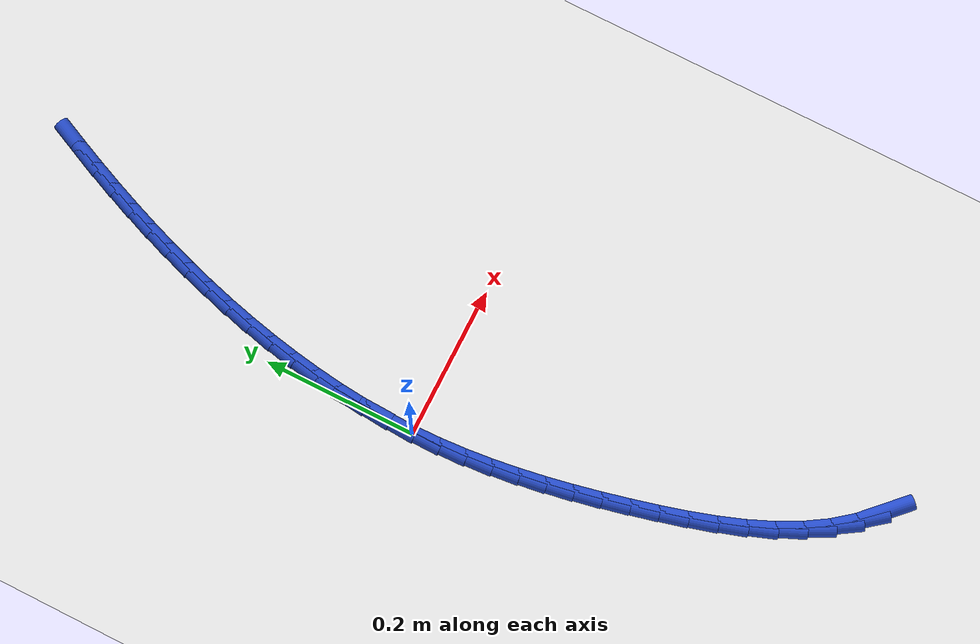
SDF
<sdf version="1.6">
 <world name="default">
  <model name="ground_plane">
   <static>1</static>
   <link name="link">
    <collision name="collision">
     <geometry><plane><normal>0 0 1</normal><size>100 100</size></plane></geometry>
     <surface><friction><ode><mu>100</mu><mu2>50</mu2></ode></friction></surface>
    </collision>
    <visual name="visual">
     <cast_shadows>0</cast_shadows>
     <geometry><plane><normal>0 0 1</normal><size>100 100</size></plane></geometry>
     <material>
      <script><uri>file://media/materials/scripts/gazebo.material</uri><name>Gazebo/WhiteGlow</name></script>
     </material>
    </visual>
   </link>
  </model>
  <model name="line">
   <link name="link_0">
    <pose>8.673617379884035e-18 -4.85722573273506e-17 0.01 0 1.57 1.5538400042042941</pose>
    <collision name="collision">
     <geometry><cylinder><radius>0.01</radius><length>0.08</length></cylinder></geometry>
    </collision>
    <visual name="visual">
     <material>
      <script><name>Gazebo/Blue</name><uri>file://media/materials/scripts/gazebo.material</uri></script>
     </material>
     <geometry><cylinder><radius>0.01</radius><length>0.08</length></cylinder></geometry>
    </visual>
   </link>
   <link name="link_1">
    <pose>0.0005829402250927743 0.0343756349599535 0.01 0 1.57 1.5145570619126267</pose>
    <collision name="collision">
     <geometry><cylinder><radius>0.01</radius><length>0.08</length></cylinder></geometry>
    </collision>
    <visual name="visual">
     <material>
      <script><name>Gazebo/Blue</name><uri>file://media/materials/scripts/gazebo.material</uri></script>
     </material>
     <geometry><cylinder><radius>0.01</radius><length>0.08</length></cylinder></geometry>
    </visual>
   </link>
   <link name="link_2">
    <pose>0.002524983309487091 0.06887102158644641 0.01 0 1.57 1.4776652040989346</pose>
    <collision name="collision">
     <geometry><cylinder><radius>0.01</radius><length>0.08</length></cylinder></geometry>
    </collision>
    <visual name="visual">
     <material>
      <script><name>Gazebo/Blue</name><uri>file://media/materials/scripts/gazebo.material</uri></script>
     </material>
     <geometry><cylinder><radius>0.01</radius><length>0.08</length></cylinder></geometry>
    </visual>
   </link>
   <link name="link_3">
    <pose>0.00575157739655551 0.10341651051952847 0.01 0 1.57 1.4429963994550714</pose>
    <collision name="collision">
     <geometry><cylinder><radius>0.01</radius><length>0.08</length></cylinder></geometry>
    </collision>
    <visual name="visual">
     <material>
      <script><name>Gazebo/Blue</name><uri>file://media/materials/scripts/gazebo.material</uri></script>
     </material>
     <geometry><cylinder><radius>0.01</radius><length>0.08</length></cylinder></geometry>
    </visual>
   </link>
   <link name="link_4">
    <pose>0.010188170629670588 0.13794245239924952 0.01 0 1.57 1.4103815337758716</pose>
    <collision name="collision">
     <geometry><cylinder><radius>0.01</radius><length>0.08</length></cylinder></geometry>
    </collision>
    <visual name="visual">
     <material>
      <script><name>Gazebo/Blue</name><uri>file://media/materials/scripts/gazebo.material</uri></script>
     </material>
     <geometry><cylinder><radius>0.01</radius><length>0.08</length></cylinder></geometry>
    </visual>
   </link>
   <link name="link_5">
    <pose>0.015760211152204887 0.17237919786565936 0.01 0 1.57 1.3796539417783982</pose>
    <collision name="collision">
     <geometry><cylinder><radius>0.01</radius><length>0.08</length></cylinder></geometry>
    </collision>
    <visual name="visual">
     <material>
      <script><name>Gazebo/Blue</name><uri>file://media/materials/scripts/gazebo.material</uri></script>
     </material>
     <geometry><cylinder><radius>0.01</radius><length>0.08</length></cylinder></geometry>
    </visual>
   </link>
   <link name="link_6">
    <pose>0.02239314710753095 0.2066570975588077 0.01 0 1.57 1.3506516858308686</pose>
    <collision name="collision">
     <geometry><cylinder><radius>0.01</radius><length>0.08</length></cylinder></geometry>
    </collision>
    <visual name="visual">
     <material>
      <script><name>Gazebo/Blue</name><uri>file://media/materials/scripts/gazebo.material</uri></script>
     </material>
     <geometry><cylinder><radius>0.01</radius><length>0.08</length></cylinder></geometry>
    </visual>
   </link>
   <link name="link_7">
    <pose>0.03001242663902133 0.24070650211874436 0.01 0 1.57 1.3232188465926384</pose>
    <collision name="collision">
     <geometry><cylinder><radius>0.01</radius><length>0.08</length></cylinder></geometry>
    </collision>
    <visual name="visual">
     <material>
      <script><name>Gazebo/Blue</name><uri>file://media/materials/scripts/gazebo.material</uri></script>
     </material>
     <geometry><cylinder><radius>0.01</radius><length>0.08</length></cylinder></geometry>
    </visual>
   </link>
   <link name="link_8">
    <pose>0.0385434978900486 0.27445776218551926 0.01 0 1.57 1.2971913056015587</pose>
    <collision name="collision">
     <geometry><cylinder><radius>0.01</radius><length>0.08</length></cylinder></geometry>
    </collision>
    <visual name="visual">
     <material>
      <script><name>Gazebo/Blue</name><uri>file://media/materials/scripts/gazebo.material</uri></script>
     </material>
     <geometry><cylinder><radius>0.01</radius><length>0.08</length></cylinder></geometry>
    </visual>
   </link>
   <link name="link_9">
    <pose>0.04791459886889569 0.3078492776391433 0.01 0 1.57 1.2723763430447803</pose>
    <collision name="collision">
     <geometry><cylinder><radius>0.01</radius><length>0.08</length></cylinder></geometry>
    </collision>
    <visual name="visual">
     <material>
      <script><name>Gazebo/Blue</name><uri>file://media/materials/scripts/gazebo.material</uri></script>
     </material>
     <geometry><cylinder><radius>0.01</radius><length>0.08</length></cylinder></geometry>
    </visual>
   </link>
   <link name="link_10">
    <pose>0.058075743798754145 0.3408822764838835 0.01 0 1.57 1.2487791047035772</pose>
    <collision name="collision">
     <geometry><cylinder><radius>0.01</radius><length>0.08</length></cylinder></geometry>
    </collision>
    <visual name="visual">
     <material>
      <script><name>Gazebo/Blue</name><uri>file://media/materials/scripts/gazebo.material</uri></script>
     </material>
     <geometry><cylinder><radius>0.01</radius><length>0.08</length></cylinder></geometry>
    </visual>
   </link>
   <link name="link_11">
    <pose>0.06898717909080394 0.3735875083456953 0.01 0 1.57 1.2264701689379098</pose>
    <collision name="collision">
     <geometry><cylinder><radius>0.01</radius><length>0.08</length></cylinder></geometry>
    </collision>
    <visual name="visual">
     <material>
      <script><name>Gazebo/Blue</name><uri>file://media/materials/scripts/gazebo.material</uri></script>
     </material>
     <geometry><cylinder><radius>0.01</radius><length>0.08</length></cylinder></geometry>
    </visual>
   </link>
   <link name="link_12">
    <pose>0.0806092104454255 0.40599589391007224 0.01 0 1.57 1.2055088621873966</pose>
    <collision name="collision">
     <geometry><cylinder><radius>0.01</radius><length>0.08</length></cylinder></geometry>
    </collision>
    <visual name="visual">
     <material>
      <script><name>Gazebo/Blue</name><uri>file://media/materials/scripts/gazebo.material</uri></script>
     </material>
     <geometry><cylinder><radius>0.01</radius><length>0.08</length></cylinder></geometry>
    </visual>
   </link>
   <link name="link_13">
    <pose>0.09290214356299935 0.4381383538625078 0.01 0 1.57 1.1859433986664367</pose>
    <collision name="collision">
     <geometry><cylinder><radius>0.01</radius><length>0.08</length></cylinder></geometry>
    </collision>
    <visual name="visual">
     <material>
      <script><name>Gazebo/Blue</name><uri>file://media/materials/scripts/gazebo.material</uri></script>
     </material>
     <geometry><cylinder><radius>0.01</radius><length>0.08</length></cylinder></geometry>
    </visual>
   </link>
   <link name="link_14">
    <pose>0.10582628414390591 0.4700458088884954 0.01 0 1.57 1.1678115564518285</pose>
    <collision name="collision">
     <geometry><cylinder><radius>0.01</radius><length>0.08</length></cylinder></geometry>
    </collision>
    <visual name="visual">
     <material>
      <script><name>Gazebo/Blue</name><uri>file://media/materials/scripts/gazebo.material</uri></script>
     </material>
     <geometry><cylinder><radius>0.01</radius><length>0.08</length></cylinder></geometry>
    </visual>
   </link>
   <link name="link_15">
    <pose>0.1193419378885257 0.5017491796735284 0.01 0 1.57 1.1511415133986735</pose>
    <collision name="collision">
     <geometry><cylinder><radius>0.01</radius><length>0.08</length></cylinder></geometry>
    </collision>
    <visual name="visual">
     <material>
      <script><name>Gazebo/Blue</name><uri>file://media/materials/scripts/gazebo.material</uri></script>
     </material>
     <geometry><cylinder><radius>0.01</radius><length>0.08</length></cylinder></geometry>
    </visual>
   </link>
   <link name="link_16">
    <pose>0.13340941049723917 0.5332793869031002 0.01 0 1.57 1.1359527827801705</pose>
    <collision name="collision">
     <geometry><cylinder><radius>0.01</radius><length>0.08</length></cylinder></geometry>
    </collision>
    <visual name="visual">
     <material>
      <script><name>Gazebo/Blue</name><uri>file://media/materials/scripts/gazebo.material</uri></script>
     </material>
     <geometry><cylinder><radius>0.01</radius><length>0.08</length></cylinder></geometry>
    </visual>
   </link>
   <link name="link_203">
    <pose>0.1723437890877081 -0.5530720432548405 0.01 0 1.57 -0.7694838353915014</pose>
    <collision name="collision">
     <geometry><cylinder><radius>0.01</radius><length>0.08</length></cylinder></geometry>
    </collision>
    <visual name="visual">
     <material>
      <script><name>Gazebo/Blue</name><uri>file://media/materials/scripts/gazebo.material</uri></script>
     </material>
     <geometry><cylinder><radius>0.01</radius><length>0.08</length></cylinder></geometry>
    </visual>
   </link>
   <link name="link_204">
    <pose>0.14894556807204773 -0.5304069508117881 0.01 0 1.57 -0.8957949856463364</pose>
    <collision name="collision">
     <geometry><cylinder><radius>0.01</radius><length>0.08</length></cylinder></geometry>
    </collision>
    <visual name="visual">
     <material>
      <script><name>Gazebo/Blue</name><uri>file://media/materials/scripts/gazebo.material</uri></script>
     </material>
     <geometry><cylinder><radius>0.01</radius><length>0.08</length></cylinder></geometry>
    </visual>
   </link>
   <link name="link_205">
    <pose>0.12830937941558265 -0.504625480466814 0.01 0 1.57 -1.0037598563770942</pose>
    <collision name="collision">
     <geometry><cylinder><radius>0.01</radius><length>0.08</length></cylinder></geometry>
    </collision>
    <visual name="visual">
     <material>
      <script><name>Gazebo/Blue</name><uri>file://media/materials/scripts/gazebo.material</uri></script>
     </material>
     <geometry><cylinder><radius>0.01</radius><length>0.08</length></cylinder></geometry>
    </visual>
   </link>
   <link name="link_206">
    <pose>0.11017893719196067 -0.4761541028961204 0.01 0 1.57 -1.0930657905884278</pose>
    <collision name="collision">
     <geometry><cylinder><radius>0.01</radius><length>0.08</length></cylinder></geometry>
    </collision>
    <visual name="visual">
     <material>
      <script><name>Gazebo/Blue</name><uri>file://media/materials/scripts/gazebo.material</uri></script>
     </material>
     <geometry><cylinder><radius>0.01</radius><length>0.08</length></cylinder></geometry>
    </visual>
   </link>
   <link name="link_207">
    <pose>0.09427972634342108 -0.44544461945785646 0.01 0 1.57 -1.1654957076567987</pose>
    <collision name="collision">
     <geometry><cylinder><radius>0.01</radius><length>0.08</length></cylinder></geometry>
    </collision>
    <visual name="visual">
     <material>
      <script><name>Gazebo/Blue</name><uri>file://media/materials/scripts/gazebo.material</uri></script>
     </material>
     <geometry><cylinder><radius>0.01</radius><length>0.08</length></cylinder></geometry>
    </visual>
   </link>
   <link name="link_208">
    <pose>0.0803372318122043 -0.41294883151017375 0.01 0 1.57 -1.2231126121206177</pose>
    <collision name="collision">
     <geometry><cylinder><radius>0.01</radius><length>0.08</length></cylinder></geometry>
    </collision>
    <visual name="visual">
     <material>
      <script><name>Gazebo/Blue</name><uri>file://media/materials/scripts/gazebo.material</uri></script>
     </material>
     <geometry><cylinder><radius>0.01</radius><length>0.08</length></cylinder></geometry>
    </visual>
   </link>
   <link name="link_209">
    <pose>0.0680769385405495 -0.3791185404112217 0.01 0 1.57 -1.2677855730378809</pose>
    <collision name="collision">
     <geometry><cylinder><radius>0.01</radius><length>0.08</length></cylinder></geometry>
    </collision>
    <visual name="visual">
     <material>
      <script><name>Gazebo/Blue</name><uri>file://media/materials/scripts/gazebo.material</uri></script>
     </material>
     <geometry><cylinder><radius>0.01</radius><length>0.08</length></cylinder></geometry>
    </visual>
   </link>
   <link name="link_210">
    <pose>0.057224331470696305 -0.34440554751915053 0.01 0 1.57 -1.3009792974159307</pose>
    <collision name="collision">
     <geometry><cylinder><radius>0.01</radius><length>0.08</length></cylinder></geometry>
    </collision>
    <visual name="visual">
     <material>
      <script><name>Gazebo/Blue</name><uri>file://media/materials/scripts/gazebo.material</uri></script>
     </material>
     <geometry><cylinder><radius>0.01</radius><length>0.08</length></cylinder></geometry>
    </visual>
   </link>
   <link name="link_211">
    <pose>0.04750489554488437 -0.30926165419211027 0.01 0 1.57 -1.3236970914897257</pose>
    <collision name="collision">
     <geometry><cylinder><radius>0.01</radius><length>0.08</length></cylinder></geometry>
    </collision>
    <visual name="visual">
     <material>
      <script><name>Gazebo/Blue</name><uri>file://media/materials/scripts/gazebo.material</uri></script>
     </material>
     <geometry><cylinder><radius>0.01</radius><length>0.08</length></cylinder></geometry>
    </visual>
   </link>
   <link name="link_212">
    <pose>0.03864474615140433 -0.27413777655012195 0.01 0 1.57 -1.3403492426499346</pose>
    <collision name="collision">
     <geometry><cylinder><radius>0.01</radius><length>0.08</length></cylinder></geometry>
    </collision>
    <visual name="visual">
     <material>
      <script><name>Gazebo/Blue</name><uri>file://media/materials/scripts/gazebo.material</uri></script>
     </material>
     <geometry><cylinder><radius>0.01</radius><length>0.08</length></cylinder></geometry>
    </visual>
   </link>
   <link name="link_213">
    <pose>0.030478801672251546 -0.23933205545465763 0.01 0 1.57 -1.359445704181161</pose>
    <collision name="collision">
     <geometry><cylinder><radius>0.01</radius><length>0.08</length></cylinder></geometry>
    </collision>
    <visual name="visual">
     <material>
      <script><name>Gazebo/Blue</name><uri>file://media/materials/scripts/gazebo.material</uri></script>
     </material>
     <geometry><cylinder><radius>0.01</radius><length>0.08</length></cylinder></geometry>
    </visual>
   </link>
   <link name="link_214">
    <pose>0.02307353579081808 -0.20481749438046884 0.01 0 1.57 -1.3821069379731132</pose>
    <collision name="collision">
     <geometry><cylinder><radius>0.01</radius><length>0.08</length></cylinder></geometry>
    </collision>
    <visual name="visual">
     <material>
      <script><name>Gazebo/Blue</name><uri>file://media/materials/scripts/gazebo.material</uri></script>
     </material>
     <geometry><cylinder><radius>0.01</radius><length>0.08</length></cylinder></geometry>
    </visual>
   </link>
   <link name="link_215">
    <pose>0.01652508795256244 -0.17052544174930348 0.01 0 1.57 -1.4083338948791524</pose>
    <collision name="collision">
     <geometry><cylinder><radius>0.01</radius><length>0.08</length></cylinder></geometry>
    </collision>
    <visual name="visual">
     <material>
      <script><name>Gazebo/Blue</name><uri>file://media/materials/scripts/gazebo.material</uri></script>
     </material>
     <geometry><cylinder><radius>0.01</radius><length>0.08</length></cylinder></geometry>
    </visual>
   </link>
   <link name="link_216">
    <pose>0.010929597602943026 -0.13638724598290847 0.01 0 1.57 -1.4380718335262672</pose>
    <collision name="collision">
     <geometry><cylinder><radius>0.01</radius><length>0.08</length></cylinder></geometry>
    </collision>
    <visual name="visual">
     <material>
      <script><name>Gazebo/Blue</name><uri>file://media/materials/scripts/gazebo.material</uri></script>
     </material>
     <geometry><cylinder><radius>0.01</radius><length>0.08</length></cylinder></geometry>
    </visual>
   </link>
   <link name="link_217">
    <pose>0.006383204187418645 -0.1023342555030334 0.01 0 1.57 -1.4712000096895268</pose>
    <collision name="collision">
     <geometry><cylinder><radius>0.01</radius><length>0.08</length></cylinder></geometry>
    </collision>
    <visual name="visual">
     <material>
      <script><name>Gazebo/Blue</name><uri>file://media/materials/scripts/gazebo.material</uri></script>
     </material>
     <geometry><cylinder><radius>0.01</radius><length>0.08</length></cylinder></geometry>
    </visual>
   </link>
   <link name="link_218">
    <pose>0.002982047151447666 -0.06829781873142528 0.01 0 1.57 -1.5075229060542719</pose>
    <collision name="collision">
     <geometry><cylinder><radius>0.01</radius><length>0.08</length></cylinder></geometry>
    </collision>
    <visual name="visual">
     <material>
      <script><name>Gazebo/Blue</name><uri>file://media/materials/scripts/gazebo.material</uri></script>
     </material>
     <geometry><cylinder><radius>0.01</radius><length>0.08</length></cylinder></geometry>
    </visual>
   </link>
   <link name="link_219">
    <pose>0.0008222659404886184 -0.03420928408983185 0.01 0 1.57 -1.546764615412229</pose>
    <collision name="collision">
     <geometry><cylinder><radius>0.01</radius><length>0.08</length></cylinder></geometry>
    </collision>
    <visual name="visual">
     <material>
      <script><name>Gazebo/Blue</name><uri>file://media/materials/scripts/gazebo.material</uri></script>
     </material>
     <geometry><cylinder><radius>0.01</radius><length>0.08</length></cylinder></geometry>
    </visual>
   </link>
   <link name="link_220">
    <pose>1.734723475976807e-17 -2.2898349882893854e-16 0.01 0 1.57 1.5530245891224859</pose>
    <collision name="collision">
     <geometry><cylinder><radius>0.01</radius><length>0.08</length></cylinder></geometry>
    </collision>
    <visual name="visual">
     <material>
      <script><name>Gazebo/Blue</name><uri>file://media/materials/scripts/gazebo.material</uri></script>
     </material>
     <geometry><cylinder><radius>0.01</radius><length>0.08</length></cylinder></geometry>
    </visual>
   </link>
   <link name="link_221">
    <pose>0.0006113887754404003 0.03439868511631932 0.01 0 1.57 1.5090921694323904</pose>
    <collision name="collision">
     <geometry><cylinder><radius>0.01</radius><length>0.08</length></cylinder></geometry>
    </collision>
    <visual name="visual">
     <material>
      <script><name>Gazebo/Blue</name><uri>file://media/materials/scripts/gazebo.material</uri></script>
     </material>
     <geometry><cylinder><radius>0.01</radius><length>0.08</length></cylinder></geometry>
    </visual>
   </link>
   <link name="link_222">
    <pose>0.0027525717122683455 0.06905542283738227 0.01 0 1.57 1.5309570906634988</pose>
    <collision name="collision">
     <geometry><cylinder><radius>0.01</radius><length>0.08</length></cylinder></geometry>
    </collision>
    <visual name="visual">
     <material>
      <script><name>Gazebo/Blue</name><uri>file://media/materials/scripts/gazebo.material</uri></script>
     </material>
     <geometry><cylinder><radius>0.01</radius><length>0.08</length></cylinder></geometry>
    </visual>
   </link>
  </model>
 </world>
</sdf>
